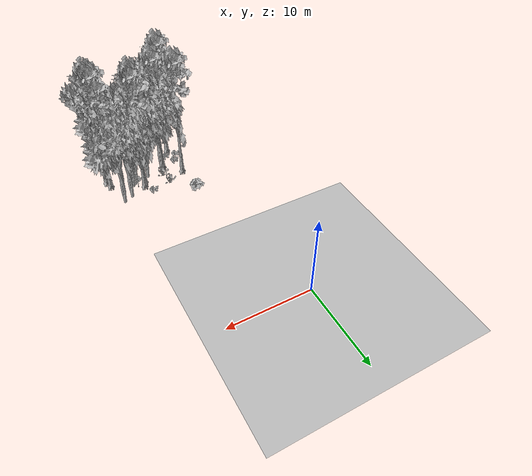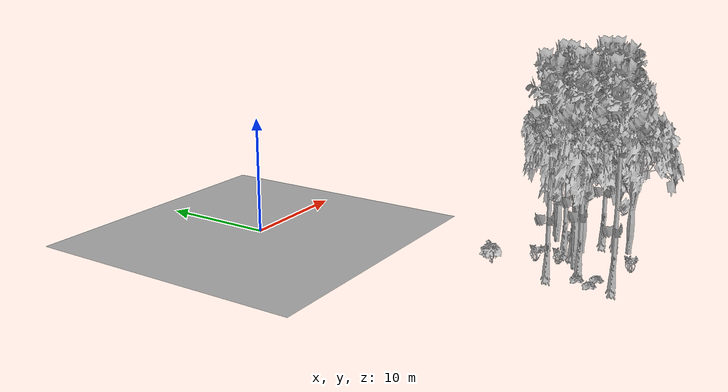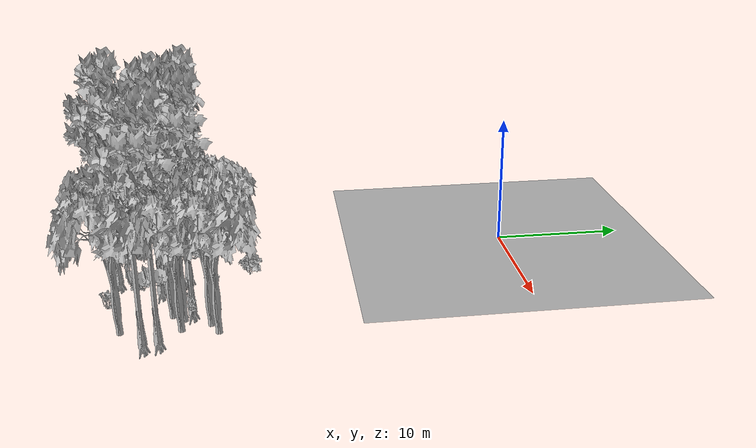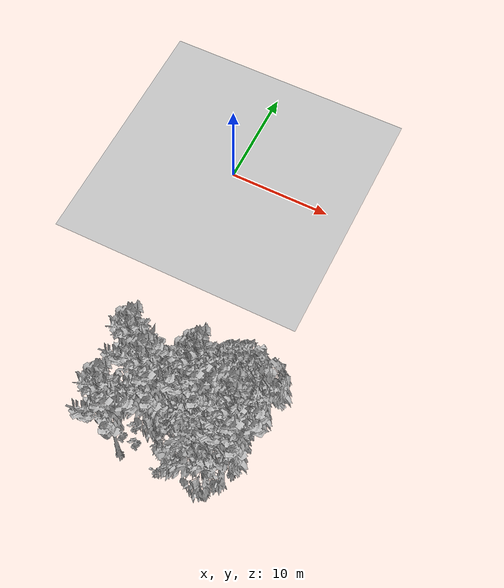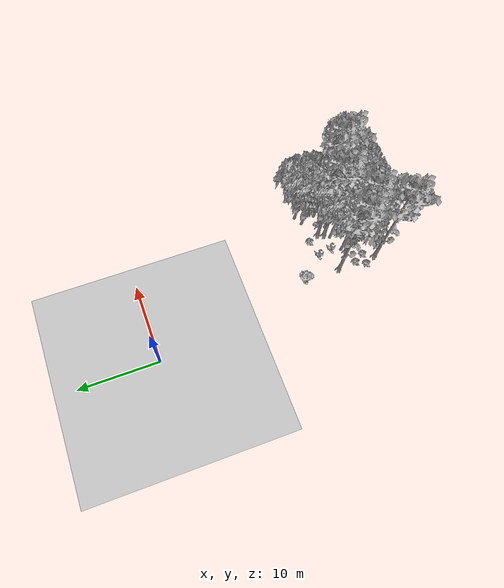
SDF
<sdf version="1.7">
 <world name="default">
  <model name="ground_plane">
   <static>1</static>
   <link name="link">
    <collision name="collision">
     <pose>-50 0 0 0 -0 0</pose>
     <geometry><plane><normal>0 0 1</normal><size>80 80</size></plane></geometry>
     <surface><contact><ode><min_depth>0.01</min_depth><max_vel>0</max_vel></ode></contact></surface>
    </collision>
    <visual name="grass">
     <cast_shadows>0</cast_shadows>
     <geometry>
      <mesh>
       <scale>0.46714285714285714 0.46714285714285714 0.1</scale>
       <uri>file://grass_plane/meshes/grass_plane.dae</uri>
      </mesh>
     </geometry>
    </visual>
   </link>
  </model>
  <model name="Tree 12">
   <static>1</static>
   <pose>9.383092029047404 -24.18230322281498 0 1.57079 -0 0</pose>
   <link name="link">
    <collision name="collision">
     <geometry><mesh><scale>3.5 5 3.5</scale><uri>model://tree_9/meshes/tree_9.obj</uri></mesh></geometry>
    </collision>
    <visual name="visual">
     <geometry><mesh><scale>3.5 5 3.5</scale><uri>model://tree_9/meshes/tree_9.obj</uri></mesh></geometry>
    </visual>
   </link>
  </model>
  <model name="Tree 24">
   <static>1</static>
   <pose>10.550268060341537 -24.655328022917278 0 1.57079 -0 0</pose>
   <link name="link">
    <collision name="collision">
     <geometry><mesh><scale>3.5 5 3.5</scale><uri>model://tree_2/meshes/tree_2.obj</uri></mesh></geometry>
    </collision>
    <visual name="visual">
     <geometry><mesh><scale>3.5 5 3.5</scale><uri>model://tree_2/meshes/tree_2.obj</uri></mesh></geometry>
    </visual>
   </link>
  </model>
  <model name="Tree 40">
   <static>1</static>
   <pose>11.739753798254611 -28.791333524938977 0 1.57079 -0 0</pose>
   <link name="link">
    <collision name="collision">
     <geometry><mesh><scale>3.5 5 3.5</scale><uri>model://tree_2/meshes/tree_2.obj</uri></mesh></geometry>
    </collision>
    <visual name="visual">
     <geometry><mesh><scale>3.5 5 3.5</scale><uri>model://tree_2/meshes/tree_2.obj</uri></mesh></geometry>
    </visual>
   </link>
  </model>
  <model name="Tree 48">
   <static>1</static>
   <pose>13.198193539983663 -26.154128070928586 0 1.57079 -0 0</pose>
   <link name="link">
    <collision name="collision">
     <geometry><mesh><scale>3.5 5 3.5</scale><uri>model://tree_9/meshes/tree_9.obj</uri></mesh></geometry>
    </collision>
    <visual name="visual">
     <geometry><mesh><scale>3.5 5 3.5</scale><uri>model://tree_9/meshes/tree_9.obj</uri></mesh></geometry>
    </visual>
   </link>
  </model>
  <model name="Tree 120">
   <static>1</static>
   <pose>8.34141178346362 -25.49397303380917 0 1.57079 -0 0</pose>
   <link name="link">
    <collision name="collision">
     <geometry><mesh><scale>3.5 5 3.5</scale><uri>model://tree_2/meshes/tree_2.obj</uri></mesh></geometry>
    </collision>
    <visual name="visual">
     <geometry><mesh><scale>3.5 5 3.5</scale><uri>model://tree_2/meshes/tree_2.obj</uri></mesh></geometry>
    </visual>
   </link>
  </model>
  <model name="Tree 183">
   <static>1</static>
   <pose>5.937615609681437 -26.609737792115364 0 1.57079 -0 0</pose>
   <link name="link">
    <collision name="collision">
     <geometry><mesh><scale>3.5 5 3.5</scale><uri>model://tree_9/meshes/tree_9.obj</uri></mesh></geometry>
    </collision>
    <visual name="visual">
     <geometry><mesh><scale>3.5 5 3.5</scale><uri>model://tree_9/meshes/tree_9.obj</uri></mesh></geometry>
    </visual>
   </link>
  </model>
  <model name="Tree 227">
   <static>1</static>
   <pose>9.081128980787668 -24.962706374869494 0 1.57079 -0 0</pose>
   <link name="link">
    <collision name="collision">
     <geometry><mesh><scale>3.5 5 3.5</scale><uri>model://tree_9/meshes/tree_9.obj</uri></mesh></geometry>
    </collision>
    <visual name="visual">
     <geometry><mesh><scale>3.5 5 3.5</scale><uri>model://tree_9/meshes/tree_9.obj</uri></mesh></geometry>
    </visual>
   </link>
  </model>
  <model name="Tree 262">
   <static>1</static>
   <pose>4.147006143393462 -29.779659104819434 0 1.57079 -0 0</pose>
   <link name="link">
    <collision name="collision">
     <geometry><mesh><scale>3.5 5 3.5</scale><uri>model://tree_9/meshes/tree_9.obj</uri></mesh></geometry>
    </collision>
    <visual name="visual">
     <geometry><mesh><scale>3.5 5 3.5</scale><uri>model://tree_9/meshes/tree_9.obj</uri></mesh></geometry>
    </visual>
   </link>
  </model>
  <model name="Tree 293">
   <static>1</static>
   <pose>3.983538713259854 -24.757600765653855 0 1.57079 -0 0</pose>
   <link name="link">
    <collision name="collision">
     <geometry><mesh><scale>3.5 5 3.5</scale><uri>model://tree_9/meshes/tree_9.obj</uri></mesh></geometry>
    </collision>
    <visual name="visual">
     <geometry><mesh><scale>3.5 5 3.5</scale><uri>model://tree_9/meshes/tree_9.obj</uri></mesh></geometry>
    </visual>
   </link>
  </model>
  <model name="Tree 447">
   <static>1</static>
   <pose>11.375638517241818 -22.825345337515202 0 1.57079 -0 0</pose>
   <link name="link">
    <collision name="collision">
     <geometry><mesh><scale>3.5 5 3.5</scale><uri>model://tree_2/meshes/tree_2.obj</uri></mesh></geometry>
    </collision>
    <visual name="visual">
     <geometry><mesh><scale>3.5 5 3.5</scale><uri>model://tree_2/meshes/tree_2.obj</uri></mesh></geometry>
    </visual>
   </link>
  </model>
  <model name="Tree 486">
   <static>1</static>
   <pose>9.905776444613181 -25.480861057828974 0 1.57079 -0 0</pose>
   <link name="link">
    <collision name="collision">
     <geometry><mesh><scale>3.5 5 3.5</scale><uri>model://tree_2/meshes/tree_2.obj</uri></mesh></geometry>
    </collision>
    <visual name="visual">
     <geometry><mesh><scale>3.5 5 3.5</scale><uri>model://tree_2/meshes/tree_2.obj</uri></mesh></geometry>
    </visual>
   </link>
  </model>
  <model name="Tree 506">
   <static>1</static>
   <pose>6.238847268503456 -26.115436855159384 0 1.57079 -0 0</pose>
   <link name="link">
    <collision name="collision">
     <geometry><mesh><scale>3.5 5 3.5</scale><uri>model://tree_2/meshes/tree_2.obj</uri></mesh></geometry>
    </collision>
    <visual name="visual">
     <geometry><mesh><scale>3.5 5 3.5</scale><uri>model://tree_2/meshes/tree_2.obj</uri></mesh></geometry>
    </visual>
   </link>
  </model>
  <model name="Tree 559">
   <static>1</static>
   <pose>12.467108659499154 -22.292844394907938 0 1.57079 -0 0</pose>
   <link name="link">
    <collision name="collision">
     <geometry><mesh><scale>3.5 5 3.5</scale><uri>model://tree_2/meshes/tree_2.obj</uri></mesh></geometry>
    </collision>
    <visual name="visual">
     <geometry><mesh><scale>3.5 5 3.5</scale><uri>model://tree_2/meshes/tree_2.obj</uri></mesh></geometry>
    </visual>
   </link>
  </model>
  <model name="Tree 573">
   <static>1</static>
   <pose>13.457965678950359 -27.138822181969342 0 1.57079 -0 0</pose>
   <link name="link">
    <collision name="collision">
     <geometry><mesh><scale>3.5 5 3.5</scale><uri>model://tree_9/meshes/tree_9.obj</uri></mesh></geometry>
    </collision>
    <visual name="visual">
     <geometry><mesh><scale>3.5 5 3.5</scale><uri>model://tree_9/meshes/tree_9.obj</uri></mesh></geometry>
    </visual>
   </link>
  </model>
  <model name="Tree 593">
   <static>1</static>
   <pose>11.886815193395655 -24.769792728207243 0 1.57079 -0 0</pose>
   <link name="link">
    <collision name="collision">
     <geometry><mesh><scale>3.5 5 3.5</scale><uri>model://tree_2/meshes/tree_2.obj</uri></mesh></geometry>
    </collision>
    <visual name="visual">
     <geometry><mesh><scale>3.5 5 3.5</scale><uri>model://tree_2/meshes/tree_2.obj</uri></mesh></geometry>
    </visual>
   </link>
  </model>
  <model name="Bush 5">
   <static>1</static>
   <pose>4.833820161614078 -28.42253359014701 0 1.57079 -0 0</pose>
   <link name="link">
    <collision name="collision">
     <geometry><mesh><scale>2 2 2</scale><uri>model://bush_2/meshes/bush_2.obj</uri></mesh></geometry>
     <surface><contact><collide_without_contact>false</collide_without_contact></contact></surface>
    </collision>
    <visual name="visual">
     <geometry><mesh><scale>2 2 2</scale><uri>model://bush_2/meshes/bush_2.obj</uri></mesh></geometry>
    </visual>
   </link>
  </model>
  <model name="Bush 22">
   <static>1</static>
   <pose>8.65564176551694 -22.79290010399273 0 1.57079 -0 0</pose>
   <link name="link">
    <collision name="collision">
     <geometry><mesh><scale>2 2 2</scale><uri>model://bush_2/meshes/bush_2.obj</uri></mesh></geometry>
     <surface><contact><collide_without_contact>false</collide_without_contact></contact></surface>
    </collision>
    <visual name="visual">
     <geometry><mesh><scale>2 2 2</scale><uri>model://bush_2/meshes/bush_2.obj</uri></mesh></geometry>
    </visual>
   </link>
  </model>
  <model name="Bush 70">
   <static>1</static>
   <pose>3.9776885216907303 -20.25705726909706 0 1.57079 -0 0</pose>
   <link name="link">
    <collision name="collision">
     <geometry><mesh><scale>2 2 2</scale><uri>model://bush_1/meshes/bush_1.obj</uri></mesh></geometry>
     <surface><contact><collide_without_contact>false</collide_without_contact></contact></surface>
    </collision>
    <visual name="visual">
     <geometry><mesh><scale>2 2 2</scale><uri>model://bush_1/meshes/bush_1.obj</uri></mesh></geometry>
    </visual>
   </link>
  </model>
  <model name="Bush 186">
   <static>1</static>
   <pose>6.662234934336681 -24.758844323411164 0 1.57079 -0 0</pose>
   <link name="link">
    <collision name="collision">
     <geometry><mesh><scale>2 2 2</scale><uri>model://bush_4/meshes/bush_4.obj</uri></mesh></geometry>
     <surface><contact><collide_without_contact>false</collide_without_contact></contact></surface>
    </collision>
    <visual name="visual">
     <geometry><mesh><scale>2 2 2</scale><uri>model://bush_4/meshes/bush_4.obj</uri></mesh></geometry>
    </visual>
   </link>
  </model>
  <model name="Bush 226">
   <static>1</static>
   <pose>7.96970286487791 -30.069397178825295 0 1.57079 -0 0</pose>
   <link name="link">
    <collision name="collision">
     <geometry><mesh><scale>2 2 2</scale><uri>model://bush_4/meshes/bush_4.obj</uri></mesh></geometry>
     <surface><contact><collide_without_contact>false</collide_without_contact></contact></surface>
    </collision>
    <visual name="visual">
     <geometry><mesh><scale>2 2 2</scale><uri>model://bush_4/meshes/bush_4.obj</uri></mesh></geometry>
    </visual>
   </link>
  </model>
  <model name="Bush 275">
   <static>1</static>
   <pose>3.450591176629807 -28.31944934228745 0 1.57079 -0 0</pose>
   <link name="link">
    <collision name="collision">
     <geometry><mesh><scale>2 2 2</scale><uri>model://bush_2/meshes/bush_2.obj</uri></mesh></geometry>
     <surface><contact><collide_without_contact>false</collide_without_contact></contact></surface>
    </collision>
    <visual name="visual">
     <geometry><mesh><scale>2 2 2</scale><uri>model://bush_2/meshes/bush_2.obj</uri></mesh></geometry>
    </visual>
   </link>
  </model>
  <model name="Bush 385">
   <static>1</static>
   <pose>10.209392805932168 -24.139933070034154 0 1.57079 -0 0</pose>
   <link name="link">
    <collision name="collision">
     <geometry><mesh><scale>2 2 2</scale><uri>model://bush_5/meshes/bush_5.obj</uri></mesh></geometry>
     <surface><contact><collide_without_contact>false</collide_without_contact></contact></surface>
    </collision>
    <visual name="visual">
     <geometry><mesh><scale>2 2 2</scale><uri>model://bush_5/meshes/bush_5.obj</uri></mesh></geometry>
    </visual>
   </link>
  </model>
  <model name="Bush 489">
   <static>1</static>
   <pose>4.100300369393565 -27.135920934060643 0 1.57079 -0 0</pose>
   <link name="link">
    <collision name="collision">
     <geometry><mesh><scale>2 2 2</scale><uri>model://bush_2/meshes/bush_2.obj</uri></mesh></geometry>
     <surface><contact><collide_without_contact>false</collide_without_contact></contact></surface>
    </collision>
    <visual name="visual">
     <geometry><mesh><scale>2 2 2</scale><uri>model://bush_2/meshes/bush_2.obj</uri></mesh></geometry>
    </visual>
   </link>
  </model>
  <model name="Bush 576">
   <static>1</static>
   <pose>6.32140768313085 -22.987127237695066 0 1.57079 -0 0</pose>
   <link name="link">
    <collision name="collision">
     <geometry><mesh><scale>2 2 2</scale><uri>model://bush_4/meshes/bush_4.obj</uri></mesh></geometry>
     <surface><contact><collide_without_contact>false</collide_without_contact></contact></surface>
    </collision>
    <visual name="visual">
     <geometry><mesh><scale>2 2 2</scale><uri>model://bush_4/meshes/bush_4.obj</uri></mesh></geometry>
    </visual>
   </link>
  </model>
 </world>
</sdf>
